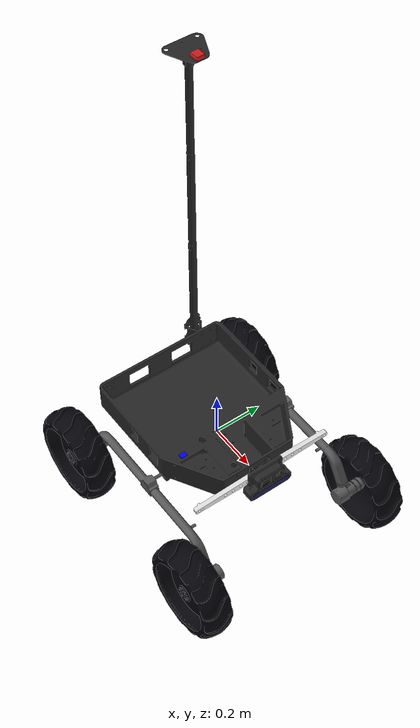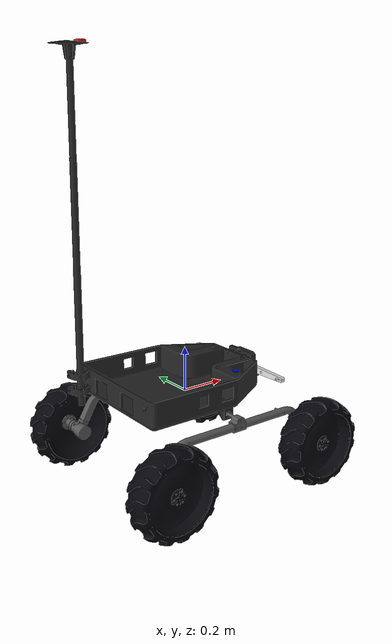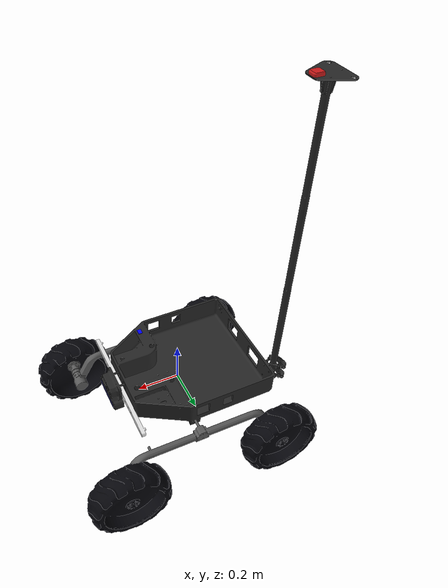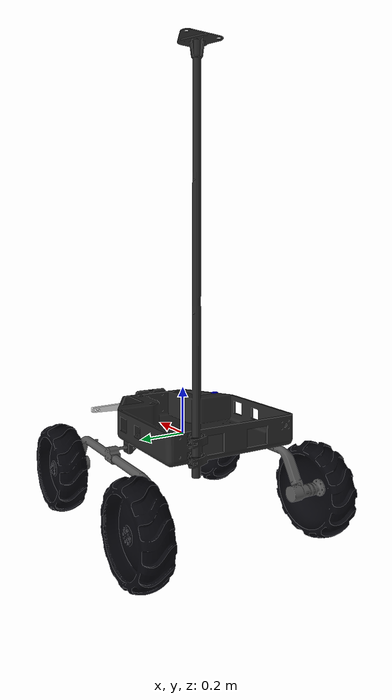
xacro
<?xml version="1.0"?>
<robot xmlns:xacro="http://www.ros.org/wiki/xacro" name="core_rover">
  <xacro:arg name="hardware_mode" default="preview"/>
  <xacro:arg name="add_core_gz_ros2_control" default="false"/>

  <xacro:include filename="core_description.urdf"/>

  <xacro:include filename="ros2_control.xacro"/>

  <xacro:core_ros2_control hardware_mode="$(arg hardware_mode)" add_core_gz_ros2_control="$(arg add_core_gz_ros2_control)"/>

</robot>

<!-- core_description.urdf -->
<robot
  name="core_description">

  <link
    name="base_link">
    <inertial>
      <origin
        xyz="-0.052364 -0.0085782 0.046426"
        rpy="0 0 0" />
      <mass
        value="72.183" />
      <inertia
        ixx="2.0084"
        ixy="0.00017234"
        ixz="-0.0066835"
        iyy="2.4018"
        iyz="-0.0015707"
        izz="4.2065" />
    </inertial>
    <visual>
      <origin
        xyz="0 0 0"
        rpy="0 0 0" />
      <geometry>
        <mesh
          filename="package://core_description/meshes/base_link.STL" />
      </geometry>
      <material
        name="">
        <color
          rgba="0.15 0.15 0.15 1" />
      </material>
    </visual>
    <collision>
      <origin
        xyz="0 0 0"
        rpy="0 0 0" />
      <geometry>
        <mesh
          filename="package://core_description/meshes/base_link.STL" />
      </geometry>
    </collision>
  </link>

  <link
    name="left_suspension_link">
    <inertial>
      <origin
        xyz="-0.00015298 -0.094081 0.024218"
        rpy="0 0 0" />
      <mass
        value="2.3189" />
      <inertia
        ixx="0.0010284"
        ixy="2.2716E-07"
        ixz="4.3618E-07"
        iyy="0.006131"
        iyz="6.6975E-07"
        izz="0.0062086" />
    </inertial>
    <visual>
      <origin
        xyz="0 0 0"
        rpy="0 0 0" />
      <geometry>
        <mesh
          filename="package://core_description/meshes/left_suspension_link.STL" />
      </geometry>
      <material
        name="">
        <color
          rgba="0.35 0.35 0.35 1" />
      </material>
    </visual>
    <collision>
      <origin
        xyz="0 0 0"
        rpy="0 0 0" />
      <geometry>
        <mesh
          filename="package://core_description/meshes/left_suspension_link.STL" />
      </geometry>
    </collision>
  </link>

  <joint
    name="left_suspension_joint"
    type="revolute">
    <origin
      xyz="0.025669 0.29798 -0.059879"
      rpy="1.5708 0.0086 3.1416" />
    <parent
      link="base_link" />
    <child
      link="left_suspension_link" />
    <axis
      xyz="0 0 1" />
    <limit
      lower="0"
      upper="0"
      effort="50"
      velocity="1.5" />
  </joint>

  <link
    name="fl_wheel_link">
    <inertial>
      <origin
        xyz="-0.023773 9.8782E-05 -6.6071E-05"
        rpy="0 0 0" />
      <mass
        value="5.1003" />
      <inertia
        ixx="0.1327"
        ixy="2.8933E-08"
        ixz="3.2058E-07"
        iyy="0.071017"
        iyz="-3.1723E-06"
        izz="0.071016" />
    </inertial>
    <visual>
      <origin
        xyz="0 0 0"
        rpy="0 0 0" />
      <geometry>
        <mesh
          filename="package://core_description/meshes/fl_wheel_link.STL" />
      </geometry>
      <material
        name="">
        <color
          rgba="0.02 0.02 0.04 1" />
      </material>
    </visual>
    <collision>
      <origin
        xyz="0 0 0"
        rpy="0 0 0" />
      <geometry>
        <mesh
          filename="package://core_description/meshes/fl_wheel_link.STL" />
      </geometry>
    </collision>
  </link>

  <joint
    name="fl_wheel_joint"
    type="continuous">
    <origin
      xyz="-0.39101 -0.14546 0.1297"
      rpy="-3.0652 -1.5708 -1.5622" />
    <parent
      link="left_suspension_link" />
    <child
      link="fl_wheel_link" />
    <axis
      xyz="1 0 0" />
  </joint>

  <link
    name="bl_wheel_link">
    <inertial>
      <origin
        xyz="-0.023773 9.8803E-05 -6.609E-05"
        rpy="0 0 0" />
      <mass
        value="5.1003" />
      <inertia
        ixx="0.1327"
        ixy="1.4795E-08"
        ixz="3.1821E-07"
        iyy="0.071017"
        iyz="-3.2228E-06"
        izz="0.071016" />
    </inertial>
    <visual>
      <origin
        xyz="0 0 0"
        rpy="0 0 0" />
      <geometry>
        <mesh
          filename="package://core_description/meshes/bl_wheel_link.STL" />
      </geometry>
      <material
        name="">
        <color
          rgba="0.02 0.02 0.04 1" />
      </material>
    </visual>
    <collision>
      <origin
        xyz="0 0 0"
        rpy="0 0 0" />
      <geometry>
        <mesh
          filename="package://core_description/meshes/bl_wheel_link.STL" />
      </geometry>
    </collision>
  </link>

  <joint
    name="bl_wheel_joint"
    type="continuous">
    <origin
      xyz="0.39101 -0.14546 0.1297"
      rpy="2.2133 -1.5708 -1.5622" />
    <parent
      link="left_suspension_link" />
    <child
      link="bl_wheel_link" />
    <axis
      xyz="1 0 0" />
  </joint>

  <link
    name="right_suspension_link">
    <inertial>
      <origin
        xyz="0.086548 -0.090726 -0.10454"
        rpy="0 0 0" />
      <mass
        value="2.3189" />
      <inertia
        ixx="0.0034651"
        ixy="-0.0025487"
        ixz="7.6346E-07"
        iyy="0.0036944"
        iyz="-1.9659E-07"
        izz="0.0062086" />
    </inertial>
    <visual>
      <origin
        xyz="0 0 0"
        rpy="0 0 0" />
      <geometry>
        <mesh
          filename="package://core_description/meshes/right_suspension_link.STL" />
      </geometry>
      <material
        name="">
        <color
          rgba="0.35 0.35 0.35 1" />
      </material>
    </visual>
    <collision>
      <origin
        xyz="0 0 0"
        rpy="0 0 0" />
      <geometry>
        <mesh
          filename="package://core_description/meshes/right_suspension_link.STL" />
      </geometry>
    </collision>
  </link>

  <joint
    name="right_suspension_joint"
    type="revolute">
    <origin
      xyz="0.0254 -0.23671 -0.028575"
      rpy="1.5708 0.76291 3.1416" />
    <parent
      link="base_link" />
    <child
      link="right_suspension_link" />
    <axis
      xyz="0 0 -1" />
    <limit
      lower="0"
      upper="0"
      effort="50"
      velocity="1.5" />
    <mimic
      joint="left_suspension_joint"
      multiplier="1"
      offset="0" />
  </joint>

  <link
    name="fr_wheel_link">
    <inertial>
      <origin
        xyz="-9.8802E-05 0.065 -6.6097E-05"
        rpy="0 0 0" />
      <mass
        value="5.1003" />
      <inertia
        ixx="0.071017"
        ixy="-1.7613E-08"
        ixz="3.2228E-06"
        iyy="0.1327"
        iyz="3.1542E-07"
        izz="0.071016" />
    </inertial>
    <visual>
      <origin
        xyz="0 0 0"
        rpy="0 0 0" />
      <geometry>
        <mesh
          filename="package://core_description/meshes/fr_wheel_link.STL" />
      </geometry>
      <material
        name="">
        <color
          rgba="0.02 0.02 0.04 1" />
      </material>
    </visual>
    <collision>
      <origin
        xyz="0 0 0"
        rpy="0 0 0" />
      <geometry>
        <mesh
          filename="package://core_description/meshes/fr_wheel_link.STL" />
      </geometry>
    </collision>
  </link>

  <joint
    name="fr_wheel_joint"
    type="continuous">
    <origin
      xyz="-0.16048 -0.39797 -0.12125"
      rpy="-1.5708 0 -1.459" />
    <parent
      link="right_suspension_link" />
    <child
      link="fr_wheel_link" />
    <axis
      xyz="0 -1 0" />
  </joint>

  <link
    name="br_wheel_link">
    <inertial>
      <origin
        xyz="-0.023773 9.8782E-05 -6.6074E-05"
        rpy="0 0 0" />
      <mass
        value="5.1003" />
      <inertia
        ixx="0.1327"
        ixy="2.9563E-08"
        ixz="3.2879E-07"
        iyy="0.071017"
        iyz="-3.1723E-06"
        izz="0.071016" />
    </inertial>
    <visual>
      <origin
        xyz="0 0 0"
        rpy="0 0 0" />
      <geometry>
        <mesh
          filename="package://core_description/meshes/br_wheel_link.STL" />
      </geometry>
      <material
        name="">
        <color
          rgba="0.02 0.02 0.04 1" />
      </material>
    </visual>
    <collision>
      <origin
        xyz="0 0 0"
        rpy="0 0 0" />
      <geometry>
        <mesh
          filename="package://core_description/meshes/br_wheel_link.STL" />
      </geometry>
    </collision>
  </link>

  <joint
    name="br_wheel_joint"
    type="continuous">
    <origin
      xyz="0.40478 0.14243 -0.21002"
      rpy="0.89286 1.5708 0" />
    <parent
      link="right_suspension_link" />
    <child
      link="br_wheel_link" />
    <axis
      xyz="-1 0 0" />
  </joint>

  <link
    name="averaging_bar_link">
    <inertial>
      <origin
        xyz="-5.3135E-13 0.0095448 -3.5616E-13"
        rpy="0 0 0" />
      <mass
        value="0.83085" />
      <inertia
        ixx="9.3227E-05"
        ixy="2.0628E-19"
        ixz="6.1943E-14"
        iyy="0.023692"
        iyz="5.8241E-22"
        izz="0.023649" />
    </inertial>
    <visual>
      <origin
        xyz="0 0 0"
        rpy="0 0 0" />
      <geometry>
        <mesh
          filename="package://core_description/meshes/averaging_bar_link.STL" />
      </geometry>
      <material
        name="">
        <color
          rgba="0.9 0.9 0.9 1" />
      </material>
    </visual>
    <collision>
      <origin
        xyz="0 0 0"
        rpy="0 0 0" />
      <geometry>
        <mesh
          filename="package://core_description/meshes/averaging_bar_link.STL" />
      </geometry>
    </collision>
  </link>

  <joint
    name="averaging_bar_joint"
    type="revolute">
    <origin
      xyz="0.3066 -0.009525 0.075057"
      rpy="3.1416 0.003802 -1.5708" />
    <parent
      link="base_link" />
    <child
      link="averaging_bar_link" />
    <axis
      xyz="0 -1 0" />
    <limit
      lower="0"
      upper="0"
      effort="50"
      velocity="1.5" />
    <mimic
      joint="left_suspension_joint"
      multiplier="-1"
      offset="0" />
  </joint>

  <link
    name="zed_camera_link">
    <inertial>
      <origin
        xyz="-0.0089676 -0.032487 -0.0027971"
        rpy="0 0 0" />
      <mass
        value="0.17032" />
      <inertia
        ixx="3.2574E-05"
        ixy="-3.2795E-09"
        ixz="1.3829E-09"
        iyy="0.00038294"
        iyz="6.4525E-08"
        izz="0.00039062" />
    </inertial>
    <visual>
      <origin
        xyz="0 0 0"
        rpy="0 0 0" />
      <geometry>
        <mesh
          filename="package://core_description/meshes/zed_camera_link.STL" />
      </geometry>
      <material
        name="">
        <color
          rgba="0.1 0.1 0.3 1" />
      </material>
    </visual>
    <collision>
      <origin
        xyz="0 0 0"
        rpy="0 0 0" />
      <geometry>
        <mesh
          filename="package://core_description/meshes/zed_camera_link.STL" />
      </geometry>
    </collision>
  </link>

  <joint
    name="zed_camera_joint"
    type="fixed">
    <origin
      xyz="0.30801 -0.00055649 0.041848"
      rpy="0 0 1.5708" />
    <parent
      link="base_link" />
    <child
      link="zed_camera_link" />
    <axis
      xyz="0 0 0" />
  </joint>

  <!-- CORE EMBEDDED GPS ANTENNA LINK (from Solidworks) -->
  <link
    name="core_gps_antenna_link">
    <inertial>
      <origin
        xyz="0 0 0"
        rpy="0 0 0" />
      <mass
        value="0" />
      <inertia
        ixx="0"
        ixy="0"
        ixz="0"
        iyy="0"
        iyz="0"
        izz="0" />
    </inertial>
    <visual>
      <origin
        xyz="0 0 0"
        rpy="0 0 0" />
      <geometry>
        <mesh
          filename="package://core_description/meshes/core_gps_antenna_link.STL" />
      </geometry>
      <material
        name="">
        <color
          rgba="0.8 0.1 0.1 1" />
      </material>
    </visual>
    <collision>
      <origin
        xyz="0 0 0"
        rpy="0 0 0" />
      <geometry>
        <mesh
          filename="package://core_description/meshes/core_gps_antenna_link.STL" />
      </geometry>
    </collision>
  </link>

  <joint
    name="core_gps_antenna_joint"
    type="fixed">
    <origin
      xyz="-0.42556 0.1677 1.4846"
      rpy="0 0 -1.5708" />
    <parent
      link="base_link" />
    <child
      link="core_gps_antenna_link" />
    <axis
      xyz="0 0 0" />
  </joint>

  <gazebo reference="core_gps_antenna_link">
    <material>
      <ambient>"0.1 0.1 0.1 1"</ambient>
      <diffuse>"0.1 0.1 0.1 1"</diffuse>
      <specular>"0.1 0.1 0.1 1"</specular>
    </material>
    <sensor name="core_gps_sensor" type="gps">
      <topic>gps/fix</topic>
      <update_rate>5.0</update_rate>
      <always_on>true</always_on>
      <gz_frame_id>core_gps_antenna_link</gz_frame_id>
    </sensor>
  </gazebo>

  <!-- CORE EMBEDDED IMU LINK -->
  <link name="core_embedded_imu_link">  <!-- Name subject to change-->
    <inertial>
      <origin
        xyz="0 0 0"
        rpy="0 0 0" />
      <mass
        value="0.003" />
      <inertia
        ixx="1.91375e-07"
        ixy="0"
        ixz="0"
        iyy="1.06e-07"
        iyz="0"
        izz="2.97375e-07" />
    </inertial>
    <visual>
      <origin
        xyz="0 0 0"
        rpy="0 0 0" />
      <geometry>
        <box
          size="0.02 0.027 0.004" />
      </geometry>
      <material
        name="">
        <color
          rgba="0.0 0.0 1.0 1" />
      </material>
    </visual>
  </link>

  <joint name="core_embedded_imu_joint" type="fixed">
    <origin
      xyz="0.1 -0.23 0.135"
      rpy="0 0 0" />
    <parent
      link="base_link" />
    <child
      link="core_embedded_imu_link" />
  </joint>

  <gazebo reference="core_embedded_imu_link">
    <material>
      <ambient>"0.1 0.1 0.1 1"</ambient>
      <diffuse>"0.1 0.1 0.1 1"</diffuse>
      <specular>"0.1 0.1 0.1 1"</specular>
    </material>
    <sensor name="core_emb_imu_sensor" type="imu">
      <topic>/imu/data</topic>
      <update_rate>10.0</update_rate>
      <always_on>true</always_on>
      <!-- Noise stddevs from the BNO-055 datasheet -->
      <imu>
        <angular_velocity>
          <x><noise type="gaussian"><mean>0</mean><stddev>0.0014</stddev></noise></x>
          <y><noise type="gaussian"><mean>0</mean><stddev>0.0014</stddev></noise></y>
          <z><noise type="gaussian"><mean>0</mean><stddev>0.0014</stddev></noise></z>
        </angular_velocity>
        <linear_acceleration>
          <x><noise type="gaussian"><mean>0</mean><stddev>0.012</stddev></noise></x>
          <y><noise type="gaussian"><mean>0</mean><stddev>0.012</stddev></noise></y>
          <z><noise type="gaussian"><mean>0</mean><stddev>0.012</stddev></noise></z>
        </linear_acceleration>
      </imu>
      <gz_frame_id>core_embedded_imu_link</gz_frame_id>
    </sensor>
  </gazebo>

  <!-- CORE CAMERA LINK (BlueFishCam) -->
  <link name="core_camera_link">
    <inertial>
      <origin
        xyz="0 0 0"
        rpy="0 0 0" />
      <mass
        value="0.13" />
      <inertia
        ixx="1.6666666666666668e-05"
        ixy="0"
        ixz="0"
        iyy="1.6666666666666668e-05"
        iyz="0"
        izz="2.1333333333333334e-05" />
    </inertial>
    <visual>
      <origin
        xyz="0 0 0"
        rpy="0 0 0" />
      <geometry>
        <box
          size="0.02 0.034 0.034" />
      </geometry>
      <material
        name="">
        <color
          rgba="0.03 0.03 0.03 1" />
      </material>
    </visual>
  </link>

  <joint name="core_camera_joint" type="fixed">
    <origin
      xyz="0.348 -0.038 0.085"
      rpy="0 0.262 0" />
    <parent
      link="base_link" />
    <child
      link="core_camera_link" />
  </joint>

  <gazebo reference="core_camera_link">
    <material>
      <ambient>"0.1 0.1 0.1 1"</ambient>
      <diffuse>"0.1 0.1 0.1 1"</diffuse>
      <specular>"0.1 0.1 0.1 1"</specular>
    </material>
    <sensor name="core_camera_sensor" type="camera">
      <topic>/camera_head/image</topic>
      <update_rate>12.0</update_rate>
      <always_on>true</always_on>
      <camera>
        <horizontal_fov>1.52</horizontal_fov>
        <image>
          <width>1280</width>
          <height>720</height>
          <format>R8G8B8</format>
        </image>
        <clip>
          <near>0.05</near>
          <far>120.0</far>
        </clip>
        <noise>
          <type>gaussian</type>
          <mean>0.0</mean>
          <stddev>0.005</stddev>
        </noise>
      </camera>
      <camera_info_topic>/camera_head/camera_info</camera_info_topic>
      <gz_frame_id>core_camera_link</gz_frame_id>
    </sensor>
  </gazebo>

  <!-- GAZEBO RAW ODOMETRY -->
  <gazebo>
    <plugin filename="gz-sim-odometry-publisher-system"
      name="gz::sim::systems::OdometryPublisher">
      <odom_frame>odom</odom_frame>
      <robot_base_frame>base_link</robot_base_frame>
      <odom_publish_frequency>50</odom_publish_frequency>
      <odom_topic>/model/core_rover/odometry</odom_topic>
      <odom_covariance_topic>/model/core_rover/odometry_with_covariance</odom_covariance_topic>
      <tf_topic>/model/core_rover/pose</tf_topic>
      <dimensions>2</dimensions>
      <xyz_offset>0 0 0</xyz_offset>
      <rpy_offset>0 0 0</rpy_offset>
      <gaussian_noise>0</gaussian_noise>
    </plugin>
  </gazebo>

</robot>
